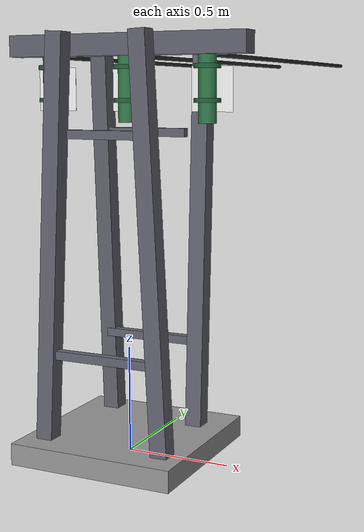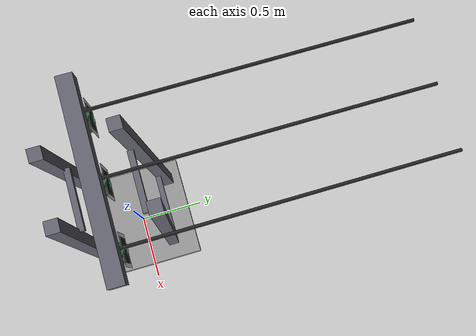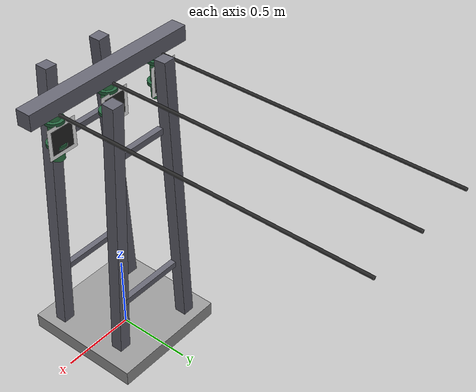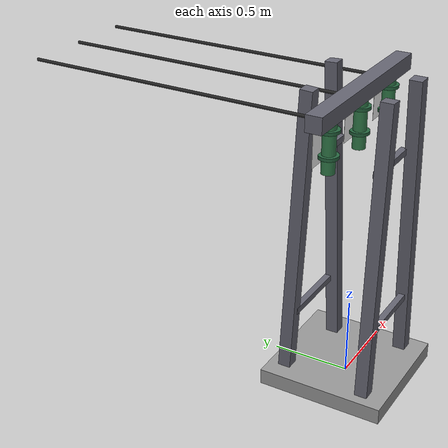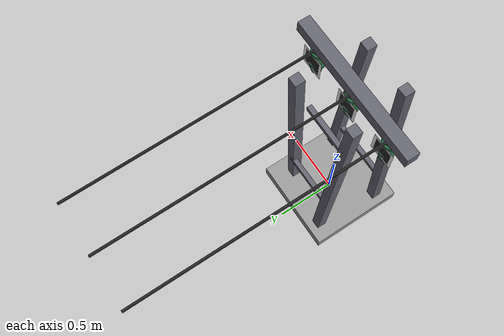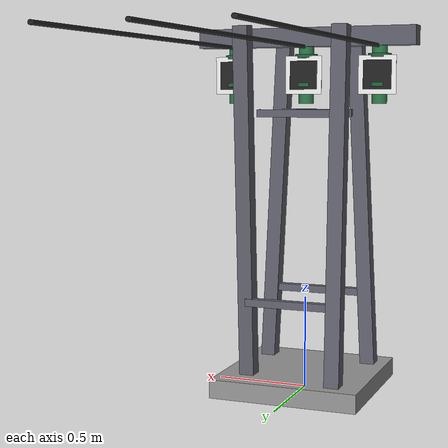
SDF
<?xml version="1.0" ?>
<!--
  FIRA Air - Electrical Tower Model
  Target 2 for insulator inspection mission
  2m high pylon with 3 insulators, each with QR codes
-->
<sdf version="1.9">
  <model name="electrical_tower">
    <static>true</static>
    <link name="link">

      <!-- Tower base (concrete foundation) -->
      <visual name="base">
        <pose>0 0 0.05 0 0 0</pose>
        <geometry>
          <box>
            <size>0.8 0.8 0.1</size>
          </box>
        </geometry>
        <material>
          <ambient>0.5 0.5 0.5 1</ambient>
          <diffuse>0.6 0.6 0.6 1</diffuse>
        </material>
      </visual>

      <!-- Tower leg 1 (front-left) -->
      <visual name="leg_fl">
        <pose>-0.25 -0.25 1 0 0.05 0</pose>
        <geometry>
          <box>
            <size>0.08 0.08 1.9</size>
          </box>
        </geometry>
        <material>
          <ambient>0.3 0.3 0.35 1</ambient>
          <diffuse>0.4 0.4 0.45 1</diffuse>
          <specular>0.5 0.5 0.5 1</specular>
        </material>
      </visual>

      <!-- Tower leg 2 (front-right) -->
      <visual name="leg_fr">
        <pose>0.25 -0.25 1 0 -0.05 0</pose>
        <geometry>
          <box>
            <size>0.08 0.08 1.9</size>
          </box>
        </geometry>
        <material>
          <ambient>0.3 0.3 0.35 1</ambient>
          <diffuse>0.4 0.4 0.45 1</diffuse>
          <specular>0.5 0.5 0.5 1</specular>
        </material>
      </visual>

      <!-- Tower leg 3 (back-left) -->
      <visual name="leg_bl">
        <pose>-0.25 0.25 1 0.05 0 0</pose>
        <geometry>
          <box>
            <size>0.08 0.08 1.9</size>
          </box>
        </geometry>
        <material>
          <ambient>0.3 0.3 0.35 1</ambient>
          <diffuse>0.4 0.4 0.45 1</diffuse>
          <specular>0.5 0.5 0.5 1</specular>
        </material>
      </visual>

      <!-- Tower leg 4 (back-right) -->
      <visual name="leg_br">
        <pose>0.25 0.25 1 -0.05 0 0</pose>
        <geometry>
          <box>
            <size>0.08 0.08 1.9</size>
          </box>
        </geometry>
        <material>
          <ambient>0.3 0.3 0.35 1</ambient>
          <diffuse>0.4 0.4 0.45 1</diffuse>
          <specular>0.5 0.5 0.5 1</specular>
        </material>
      </visual>

      <!-- Cross braces lower -->
      <visual name="brace_low_1">
        <pose>0 -0.25 0.5 0 0 0</pose>
        <geometry>
          <box>
            <size>0.5 0.04 0.04</size>
          </box>
        </geometry>
        <material>
          <ambient>0.3 0.3 0.35 1</ambient>
          <diffuse>0.4 0.4 0.45 1</diffuse>
        </material>
      </visual>

      <visual name="brace_low_2">
        <pose>0 0.25 0.5 0 0 0</pose>
        <geometry>
          <box>
            <size>0.5 0.04 0.04</size>
          </box>
        </geometry>
        <material>
          <ambient>0.3 0.3 0.35 1</ambient>
          <diffuse>0.4 0.4 0.45 1</diffuse>
        </material>
      </visual>

      <!-- Cross braces upper -->
      <visual name="brace_up_1">
        <pose>0 -0.2 1.5 0 0 0</pose>
        <geometry>
          <box>
            <size>0.4 0.04 0.04</size>
          </box>
        </geometry>
        <material>
          <ambient>0.3 0.3 0.35 1</ambient>
          <diffuse>0.4 0.4 0.45 1</diffuse>
        </material>
      </visual>

      <visual name="brace_up_2">
        <pose>0 0.2 1.5 0 0 0</pose>
        <geometry>
          <box>
            <size>0.4 0.04 0.04</size>
          </box>
        </geometry>
        <material>
          <ambient>0.3 0.3 0.35 1</ambient>
          <diffuse>0.4 0.4 0.45 1</diffuse>
        </material>
      </visual>

      <!-- Top cross beam (holds insulators) -->
      <visual name="top_beam">
        <pose>0 0 1.9 0 0 0</pose>
        <geometry>
          <box>
            <size>1.2 0.1 0.1</size>
          </box>
        </geometry>
        <material>
          <ambient>0.3 0.3 0.35 1</ambient>
          <diffuse>0.4 0.4 0.45 1</diffuse>
        </material>
      </visual>

      <!-- INSULATORS WITH QR CODES -->

      <!-- Insulator 1 (left) -->
      <visual name="insulator_1_body">
        <pose>-0.4 0 1.7 0 0 0</pose>
        <geometry>
          <cylinder>
            <radius>0.04</radius>
            <length>0.3</length>
          </cylinder>
        </geometry>
        <material>
          <ambient>0.1 0.4 0.2 1</ambient>
          <diffuse>0.2 0.5 0.3 1</diffuse>
          <specular>0.3 0.4 0.3 1</specular>
        </material>
      </visual>

      <visual name="insulator_1_ring1">
        <pose>-0.4 0 1.8 0 0 0</pose>
        <geometry>
          <cylinder>
            <radius>0.06</radius>
            <length>0.02</length>
          </cylinder>
        </geometry>
        <material>
          <ambient>0.1 0.3 0.2 1</ambient>
          <diffuse>0.15 0.4 0.25 1</diffuse>
        </material>
      </visual>

      <visual name="insulator_1_ring2">
        <pose>-0.4 0 1.65 0 0 0</pose>
        <geometry>
          <cylinder>
            <radius>0.06</radius>
            <length>0.02</length>
          </cylinder>
        </geometry>
        <material>
          <ambient>0.1 0.3 0.2 1</ambient>
          <diffuse>0.15 0.4 0.25 1</diffuse>
        </material>
      </visual>

      <!-- QR code on insulator 1 -->
      <visual name="qr_insulator_1_bg">
        <pose>-0.4 0.05 1.7 1.5707 0 0</pose>
        <geometry>
          <box>
            <size>0.2 0.2 0.001</size>
          </box>
        </geometry>
        <material>
          <ambient>1.0 1.0 1.0 1</ambient>
          <diffuse>1.0 1.0 1.0 1</diffuse>
        </material>
      </visual>

      <visual name="qr_insulator_1_pattern">
        <pose>-0.4 0.051 1.7 1.5707 0 0</pose>
        <geometry>
          <box>
            <size>0.15 0.15 0.001</size>
          </box>
        </geometry>
        <material>
          <ambient>0.1 0.1 0.1 1</ambient>
          <diffuse>0.15 0.15 0.15 1</diffuse>
        </material>
      </visual>

      <!-- Insulator 2 (center) -->
      <visual name="insulator_2_body">
        <pose>0 0 1.7 0 0 0</pose>
        <geometry>
          <cylinder>
            <radius>0.04</radius>
            <length>0.3</length>
          </cylinder>
        </geometry>
        <material>
          <ambient>0.1 0.4 0.2 1</ambient>
          <diffuse>0.2 0.5 0.3 1</diffuse>
          <specular>0.3 0.4 0.3 1</specular>
        </material>
      </visual>

      <visual name="insulator_2_ring1">
        <pose>0 0 1.8 0 0 0</pose>
        <geometry>
          <cylinder>
            <radius>0.06</radius>
            <length>0.02</length>
          </cylinder>
        </geometry>
        <material>
          <ambient>0.1 0.3 0.2 1</ambient>
          <diffuse>0.15 0.4 0.25 1</diffuse>
        </material>
      </visual>

      <visual name="insulator_2_ring2">
        <pose>0 0 1.65 0 0 0</pose>
        <geometry>
          <cylinder>
            <radius>0.06</radius>
            <length>0.02</length>
          </cylinder>
        </geometry>
        <material>
          <ambient>0.1 0.3 0.2 1</ambient>
          <diffuse>0.15 0.4 0.25 1</diffuse>
        </material>
      </visual>

      <!-- QR code on insulator 2 -->
      <visual name="qr_insulator_2_bg">
        <pose>0 0.05 1.7 1.5707 0 0</pose>
        <geometry>
          <box>
            <size>0.2 0.2 0.001</size>
          </box>
        </geometry>
        <material>
          <ambient>1.0 1.0 1.0 1</ambient>
          <diffuse>1.0 1.0 1.0 1</diffuse>
        </material>
      </visual>

      <visual name="qr_insulator_2_pattern">
        <pose>0 0.051 1.7 1.5707 0 0</pose>
        <geometry>
          <box>
            <size>0.15 0.15 0.001</size>
          </box>
        </geometry>
        <material>
          <ambient>0.1 0.1 0.1 1</ambient>
          <diffuse>0.15 0.15 0.15 1</diffuse>
        </material>
      </visual>

      <!-- Insulator 3 (right) -->
      <visual name="insulator_3_body">
        <pose>0.4 0 1.7 0 0 0</pose>
        <geometry>
          <cylinder>
            <radius>0.04</radius>
            <length>0.3</length>
          </cylinder>
        </geometry>
        <material>
          <ambient>0.1 0.4 0.2 1</ambient>
          <diffuse>0.2 0.5 0.3 1</diffuse>
          <specular>0.3 0.4 0.3 1</specular>
        </material>
      </visual>

      <visual name="insulator_3_ring1">
        <pose>0.4 0 1.8 0 0 0</pose>
        <geometry>
          <cylinder>
            <radius>0.06</radius>
            <length>0.02</length>
          </cylinder>
        </geometry>
        <material>
          <ambient>0.1 0.3 0.2 1</ambient>
          <diffuse>0.15 0.4 0.25 1</diffuse>
        </material>
      </visual>

      <visual name="insulator_3_ring2">
        <pose>0.4 0 1.65 0 0 0</pose>
        <geometry>
          <cylinder>
            <radius>0.06</radius>
            <length>0.02</length>
          </cylinder>
        </geometry>
        <material>
          <ambient>0.1 0.3 0.2 1</ambient>
          <diffuse>0.15 0.4 0.25 1</diffuse>
        </material>
      </visual>

      <!-- QR code on insulator 3 -->
      <visual name="qr_insulator_3_bg">
        <pose>0.4 0.05 1.7 1.5707 0 0</pose>
        <geometry>
          <box>
            <size>0.2 0.2 0.001</size>
          </box>
        </geometry>
        <material>
          <ambient>1.0 1.0 1.0 1</ambient>
          <diffuse>1.0 1.0 1.0 1</diffuse>
        </material>
      </visual>

      <visual name="qr_insulator_3_pattern">
        <pose>0.4 0.051 1.7 1.5707 0 0</pose>
        <geometry>
          <box>
            <size>0.15 0.15 0.001</size>
          </box>
        </geometry>
        <material>
          <ambient>0.1 0.1 0.1 1</ambient>
          <diffuse>0.15 0.15 0.15 1</diffuse>
        </material>
      </visual>

      <!-- Power lines (visual only) -->
      <visual name="wire_1">
        <pose>-0.4 1 1.85 1.5707 0 0</pose>
        <geometry>
          <cylinder>
            <radius>0.01</radius>
            <length>2</length>
          </cylinder>
        </geometry>
        <material>
          <ambient>0.1 0.1 0.1 1</ambient>
          <diffuse>0.15 0.15 0.15 1</diffuse>
        </material>
      </visual>

      <visual name="wire_2">
        <pose>0 1 1.85 1.5707 0 0</pose>
        <geometry>
          <cylinder>
            <radius>0.01</radius>
            <length>2</length>
          </cylinder>
        </geometry>
        <material>
          <ambient>0.1 0.1 0.1 1</ambient>
          <diffuse>0.15 0.15 0.15 1</diffuse>
        </material>
      </visual>

      <visual name="wire_3">
        <pose>0.4 1 1.85 1.5707 0 0</pose>
        <geometry>
          <cylinder>
            <radius>0.01</radius>
            <length>2</length>
          </cylinder>
        </geometry>
        <material>
          <ambient>0.1 0.1 0.1 1</ambient>
          <diffuse>0.15 0.15 0.15 1</diffuse>
        </material>
      </visual>

      <!-- Collision for tower structure -->
      <collision name="collision">
        <pose>0 0 1 0 0 0</pose>
        <geometry>
          <box>
            <size>0.6 0.6 2</size>
          </box>
        </geometry>
      </collision>

    </link>
  </model>
</sdf>
